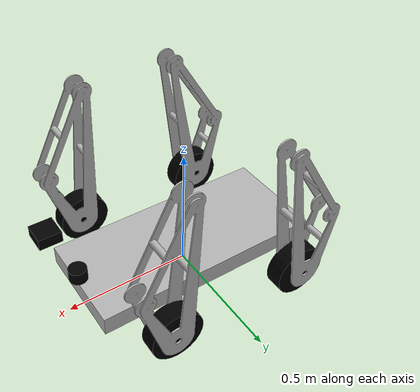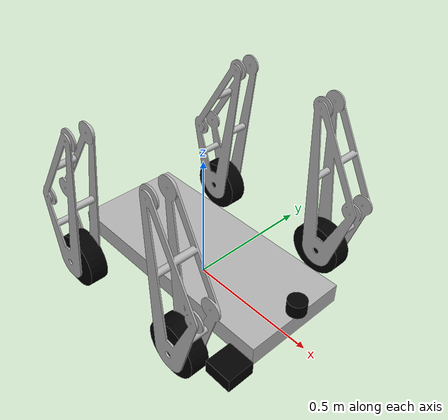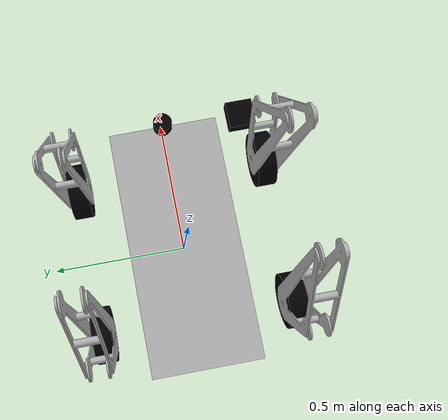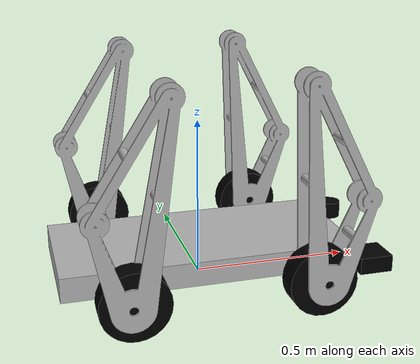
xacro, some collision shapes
<?xml version="1.0"?>
<robot xmlns:xacro="http://www.ros.org/wiki/xacro" name="ibex">

    <!-- Argument to determine if we're in simulation -->
    <xacro:arg name="sim_mode" default="true" />
    <xacro:property name="sim_mode" value="$(arg sim_mode)" />

    <!-- Core robot description -->
    <xacro:include filename="ibex_core.urdf.xacro" />

    <!-- If sim_mode is true -->
    <xacro:if value="${sim_mode}">
        <xacro:include filename="ibex_gazebo.urdf.xacro" />
        <xacro:include filename="ibex_sim_ros2_control.urdf.xacro" />
    </xacro:if>

    <!-- If sim_mode is false -->
    <xacro:unless value="${sim_mode}">
        <xacro:include filename="ibex_hardware_ros2_control.urdf.xacro" />
    </xacro:unless>

</robot>

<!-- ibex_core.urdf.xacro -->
<robot xmlns:xacro="http://www.ros.org/wiki/xacro" name="ibex_core">

    <!-- MATERIALS                                 -->

    <material name="black">
        <color rgba="0.0 0.0 0.0 1.0" />
    </material>

    <material name="silver">
        <color rgba="0.700 0.700 0.700 1.000"/>
    </material>

    <!-- PROPERTIES AND PARAMETERS                 -->

    <!-- Mesh File Paths -->
    <xacro:property name="base_file_path"           value="package://robot_description/meshes/" />
    <xacro:property name="mesh_base_link"           value="${base_file_path}base_link.stl" />
    <xacro:property name="mesh_front_left_wheel"    value="${base_file_path}wheel_front_left.stl" />
    <xacro:property name="mesh_front_right_wheel"   value="${base_file_path}wheel_front_right.stl" />
    <xacro:property name="mesh_rear_left_wheel"     value="${base_file_path}wheel_rear_left.stl" />
    <xacro:property name="mesh_rear_right_wheel"    value="${base_file_path}wheel_rear_right.stl" />
    <xacro:property name="mesh_front_left_flipper"  value="${base_file_path}flipper_front_left.stl" />
    <xacro:property name="mesh_front_right_flipper" value="${base_file_path}flipper_front_right.stl" />
    <xacro:property name="mesh_rear_left_flipper"   value="${base_file_path}flipper_front_left.stl" />
    <xacro:property name="mesh_rear_right_flipper"  value="${base_file_path}flipper_rear_right.stl" />
    <xacro:property name="mesh_scale"               value="0.001 0.001 0.001" />
    <xacro:property name="mesh_rpy"                 value="0 0 -1.57079"/>

    <!-- Chassis Properties -->
    <xacro:property name="chassis_mass"             value="5.0" />
    <xacro:property name="chassis_length"           value="0.4096"/>  <!-- 2 ft -->
    <xacro:property name="chassis_width"            value="0.9144"/>  <!-- 2 ft -->
    <xacro:property name="chassis_height"           value="0.0762"/>  <!-- 6 in -->

    <xacro:property name="chassis_ixx" value="${(chassis_mass / 12.0) * (chassis_height*chassis_height + chassis_width*chassis_width)}"/>
    <xacro:property name="chassis_iyy" value="${(chassis_mass / 12.0) * (chassis_length*chassis_length + chassis_height*chassis_height)}"/>
    <xacro:property name="chassis_izz" value="${(chassis_mass / 12.0) * (chassis_length*chassis_length + chassis_width*chassis_width)}"/>

    <!-- Wheel Properties -->
    <xacro:property name="wheel_mass"               value="0.5" />
    <xacro:property name="wheel_radius"             value="0.102" />
    <xacro:property name="wheel_thickness"          value="0.069" />

    <xacro:property name="wheel_ixx" value="${(wheel_mass/12.0) * (3*wheel_radius*wheel_radius + wheel_thickness*wheel_thickness)}"/>
    <xacro:property name="wheel_iyy" value="${(wheel_mass/2.0)  * (wheel_radius*wheel_radius)}"/>
    <xacro:property name="wheel_izz" value="${wheel_ixx}"/>

    <xacro:property name="wheel_offset_x"           value="0.2708"/>
    <xacro:property name="wheel_offset_y"           value="${0.2794 + wheel_thickness}"/>
    <xacro:property name="wheel_offset_z"           value="0.0516"/>

    <!-- MACROS                                    -->

    <!-- Wheel Macro: Creates a continuous joint wheel -->
    <xacro:macro name="wheel_macro" params="name_prefix x_offset y_offset z_offset">
        <link name="${name_prefix}_wheel_link">
            <inertial>
                <mass value="${wheel_mass}" />
                <origin xyz="0 0 0" rpy="0 0 0" />
                <inertia ixx="${wheel_ixx}" ixy="0.0" ixz="0.0"
                         iyy="${wheel_iyy}" iyz="0.0"
                         izz="${wheel_izz}" />
            </inertial>

            <visual>
                <origin xyz="0 0 0" rpy="${pi / 2.0} 0 0" />
                <geometry>
                    <cylinder radius="${wheel_radius}" length="${wheel_thickness}" />
                </geometry>
                <material name="black" />
            </visual>

            <collision>
                <origin xyz="0 0 0" rpy="${pi / 2.0} 0 0" />
                <geometry>
                    <cylinder radius="${wheel_radius}" length="${wheel_thickness}" />
                </geometry>
            </collision>
        </link>

        <joint name="${name_prefix}_wheel_joint" type="continuous">
            <parent link="base_link" />
            <child link="${name_prefix}_wheel_link" />
            <origin xyz="${x_offset} ${y_offset} ${z_offset}" rpy="0 0 0" />
            <axis xyz="0 1 0" />
        </joint>
    </xacro:macro>

    <!-- Flipper Macro: Creates a fixed joint flipper -->
    <xacro:macro name="flipper_macro" params="name mesh_file
                                               origin_xyz origin_rpy
                                               inertial_origin_xyz inertial_mass
                                               inertial_ixx inertial_iyy inertial_izz
                                               inertial_ixy inertial_iyz inertial_ixz
                                               joint_origin_xyz joint_origin_rpy">
        <link name="${name}">
            <inertial>
                <origin xyz="${inertial_origin_xyz}" rpy="0 0 0"/>
                <mass value="${inertial_mass}"/>
                <inertia ixx="${inertial_ixx}" iyy="${inertial_iyy}" izz="${inertial_izz}"
                         ixy="${inertial_ixy}" iyz="${inertial_iyz}" ixz="${inertial_ixz}"/>
            </inertial>

            <visual>
                <origin xyz="${origin_xyz}" rpy="${origin_rpy}"/>
                <geometry>
                    <mesh filename="${mesh_file}" scale="${mesh_scale}"/>
                </geometry>
                <material name="silver"/>
            </visual>
        </link>

        <joint name="${name}_flipper_joint" type="fixed">
            <parent link="base_link"/>
            <child link="${name}"/>
            <origin xyz="${joint_origin_xyz}" rpy="${joint_origin_rpy}"/>
        </joint>
    </xacro:macro>

    <!-- BASE FOOTPRINT AND BASE LINK              -->

    <link name="base_footprint" />

    <link name="base_link">
        <inertial>
            <origin xyz="-2.1660968987257366e-16 -1.7328775189805893e-16 0.028711464160038225" rpy="0 0 0"/>
            <mass value="${chassis_mass}"/>
            <inertia ixx="${chassis_ixx}" iyy="${chassis_iyy}" izz="${chassis_izz}"
                     ixy="0" iyz="0" ixz="0"/>
        </inertial>

        <visual>
            <origin xyz="0 0 0" rpy="${mesh_rpy}"/>
            <geometry>
                <mesh filename="${mesh_base_link}" scale="${mesh_scale}"/>
            </geometry>
            <material name="silver"/>
        </visual>

        <collision>
            <origin xyz="0 0 ${chassis_height / 2.0}" rpy="${mesh_rpy}"/>
            <geometry>
                <box size="${chassis_length} ${chassis_width} ${chassis_height}"/>
            </geometry>
        </collision>
    </link>

    <joint name="base_joint" type="fixed">
        <parent link="base_footprint" />
        <child link="base_link" />
        <origin xyz="0 0 0.0484" rpy="0 0 0"/>
    </joint>

    <!-- SENSORS                                   -->

    <!-- LiDAR Link and Joint -->
    <link name="laser_link">
        <inertial>
            <origin xyz="-0.011945780406062 -0.000381929217680526 -0.0170649378129477" rpy="0 0 0" />
            <mass value="0.073084435549317" />
            <inertia ixx="1.96074931730795E-05" ixy="-3.62091076640009E-07" ixz="4.28230084046735E-07"
                     iyy="2.40983835136327E-05" iyz="1.50180909250652E-08"
                     izz="4.14184164228595E-05" />
        </inertial>

        <visual>
            <origin xyz="0 0 0" rpy="0 0 0" />
            <geometry>
                <cylinder radius="0.035" length="0.05"/>
            </geometry>
            <material name="black"/>
        </visual>

        <collision>
            <origin xyz="0 0 0" rpy="0 0 0" />
            <geometry>
                <cylinder radius="0.035" length="0.05"/>
            </geometry>
        </collision>
    </link>

    <joint name="laser_joint" type="fixed">
        <parent link="base_link" />
        <child link="laser_link" />
        <origin xyz="0.45 0 0.12" rpy="0 0 0" />
    </joint>

    <!-- IMU Link and Joint -->
    <link name="imu_link">
        <inertial>
            <origin xyz="-0.00552433659106688 0.000168210391520346 0.000514000497342681" rpy="0 0 0" />
            <mass value="0.000528415362211671" />
            <inertia ixx="1.46176048428261E-08" ixy="1.40015117949421E-10" ixz="-1.99633872937403E-12"
                     iyy="8.59662482954888E-09" iyz="7.52375112767959E-12"
                     izz="2.30279421279312E-08" />
        </inertial>

        <visual>
            <origin xyz="0 0 0" rpy="0 0 0" />
            <geometry>
                <box size="0.1 0.1 0.05"/>
            </geometry>
            <material name="black" />
        </visual>

        <collision>
            <origin xyz="0 0 0" rpy="0 0 0" />
            <geometry>
                <box size="0.1 0.1 0.05"/>
            </geometry>
        </collision>
    </link>

    <joint name="imu_joint" type="fixed">
        <parent link="base_link" />
        <child link="imu_link" />
        <origin xyz="0.45 -0.30 0.07" rpy="0 0 0" />
    </joint>

    <!-- WHEELS                                    -->

    <xacro:wheel_macro name_prefix="front_left"
                       x_offset="${wheel_offset_x}"
                       y_offset="${wheel_offset_y}"
                       z_offset="${wheel_offset_z}" />

    <xacro:wheel_macro name_prefix="front_right"
                       x_offset="${wheel_offset_x}"
                       y_offset="${-wheel_offset_y}"
                       z_offset="${wheel_offset_z}" />

    <xacro:wheel_macro name_prefix="rear_left"
                       x_offset="${-wheel_offset_x}"
                       y_offset="${wheel_offset_y}"
                       z_offset="${wheel_offset_z}" />

    <xacro:wheel_macro name_prefix="rear_right"
                       x_offset="${-wheel_offset_x}"
                       y_offset="${-wheel_offset_y}"
                       z_offset="${wheel_offset_z}" />

    <!-- FLIPPERS                                  -->

    <!-- Front Left Flipper -->
    <xacro:flipper_macro
        name="front_left_flipper"
        mesh_file="${mesh_front_left_flipper}"
        origin_xyz="-0.3108 -0.2794 -0.0516"
        origin_rpy="0 0 -1.57079"
        inertial_origin_xyz="0.044450000334023076 0.005646153366949069 0.249739430595357"
        inertial_mass="0.01"
        inertial_ixx="0.281827"
        inertial_iyy="0.262219"
        inertial_izz="0.040985"
        inertial_ixy="-0.0"
        inertial_iyz="0.025816"
        inertial_ixz="-0.0"
        joint_origin_xyz="0.3108 0.2794 0.0516"
        joint_origin_rpy="0 0 0" />

    <!-- Front Right Flipper -->
    <xacro:flipper_macro
        name="front_right_flipper"
        mesh_file="${mesh_front_right_flipper}"
        origin_xyz="-0.3108 0.2794 -0.0516"
        origin_rpy="0 0 -1.57079"
        inertial_origin_xyz="0.044450000334053885 0.01614155751815055 0.24928119135390578"
        inertial_mass="0.01"
        inertial_ixx="0.281827"
        inertial_iyy="0.256055"
        inertial_izz="0.047149"
        inertial_ixy="0.0"
        inertial_iyz="-0.044632"
        inertial_ixz="-0.0"
        joint_origin_xyz="0.3108 -0.2794 0.0516"
        joint_origin_rpy="0 0 0" />

    <!-- Rear Left Flipper -->
    <xacro:flipper_macro
        name="rear_left_flipper"
        mesh_file="${mesh_rear_left_flipper}"
        origin_xyz="0.3108 0.4294 -0.0516"
        origin_rpy="0 0 -1.57079"
        inertial_origin_xyz="-0.044450000334023076 0.01614155751815055 0.24928119135390578"
        inertial_mass="0.01"
        inertial_ixx="0.281827"
        inertial_iyy="0.100275"
        inertial_izz="0.202929"
        inertial_ixy="0.0"
        inertial_iyz="-0.101331"
        inertial_ixz="0.0"
        joint_origin_xyz="-0.3108 0.2794 0.0516"
        joint_origin_rpy="0 0 0" />

    <!-- Rear Right Flipper -->
    <xacro:flipper_macro
        name="rear_right_flipper"
        mesh_file="${mesh_rear_right_flipper}"
        origin_xyz="0.3108 0.2794 -0.0516"
        origin_rpy="0 0 -1.57079"
        inertial_origin_xyz="-0.044450000334023076 0.016141557518147776 0.24928119135391122"
        inertial_mass="0.01"
        inertial_ixx="0.281827"
        inertial_iyy="0.256055"
        inertial_izz="0.047149"
        inertial_ixy="-0.0"
        inertial_iyz="-0.044632"
        inertial_ixz="0.0"
        joint_origin_xyz="-0.3108 -0.2794 0.0516"
        joint_origin_rpy="0 0 0" />

</robot>
